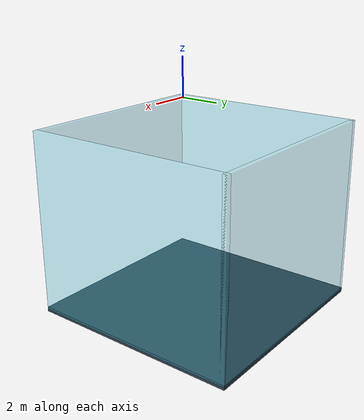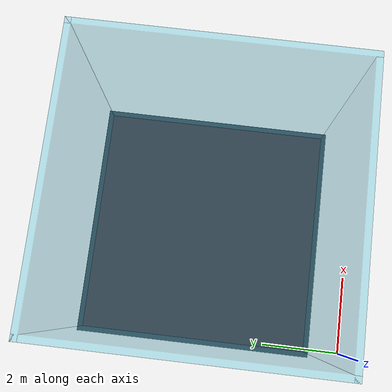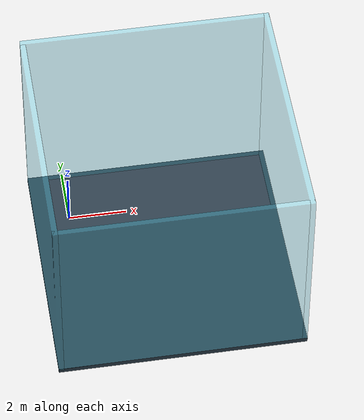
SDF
<sdf version="1.9">
 <world name="ibvs_gz">
  <physics name="default_physics" type="ignored">
   <max_step_size>0.001</max_step_size>
   <real_time_factor>1.0</real_time_factor>
  </physics>
  <plugin filename="gz-sim-physics-system" name="gz::sim::systems::Physics"/>
  <plugin filename="gz-sim-user-commands-system" name="gz::sim::systems::UserCommands"/>
  <plugin filename="gz-sim-scene-broadcaster-system" name="gz::sim::systems::SceneBroadcaster"/>
  <plugin filename="libgz-sim-imu-system.so" name="gz::sim::systems::Imu"/>
  <plugin filename="gz-sim-sensors-system" name="gz::sim::systems::Sensors">
   <render_engine>ogre2</render_engine>
  </plugin>
  <plugin filename="gz-sim-buoyancy-system" name="gz::sim::systems::Buoyancy">
   <graded_buoyancy>
    <default_density>1000</default_density>
    <density_change><above_depth>0</above_depth><density>1</density></density_change>
   </graded_buoyancy>
   <enable>bluerov2_ping</enable>
  </plugin>
  <include><uri>https://fuel.gazebosim.org/1.0/OpenRobotics/models/Sun</uri></include>
  <model name="underwater_tank">
   <static>true</static>
   <pose>4.0 4.0 -4 0 0 0</pose>
   <link name="floor">
    <pose>0 0 -4.0 0 0 0</pose>
    <collision name="collision"><geometry><box><size>9.4 9.4 0.2</size></box></geometry></collision>
    <visual name="visual">
     <geometry><box><size>9.4 9.4 0.2</size></box></geometry>
     <material>
      <ambient>0.18 0.25 0.30 1</ambient>
      <diffuse>0.18 0.25 0.30 1</diffuse>
      <specular>0.25 0.25 0.25 1</specular>
     </material>
    </visual>
   </link>
   <link name="wall_left">
    <pose>-4.6 0 0 0 0 0</pose>
    <collision name="collision"><geometry><box><size>0.2 9.4 8</size></box></geometry></collision>
    <visual name="visual">
     <geometry><box><size>0.2 9.4 8</size></box></geometry>
     <transparency>0.35</transparency>
     <material>
      <ambient>0.25 0.75 0.85 0.35</ambient>
      <diffuse>0.25 0.75 0.85 0.35</diffuse>
      <specular>0.8 0.9 1.0 0.35</specular>
     </material>
    </visual>
   </link>
   <link name="wall_right">
    <pose>4.6 0 0 0 0 0</pose>
    <collision name="collision"><geometry><box><size>0.2 9.4 8</size></box></geometry></collision>
    <visual name="visual">
     <geometry><box><size>0.2 9.4 8</size></box></geometry>
     <transparency>0.35</transparency>
     <material>
      <ambient>0.25 0.75 0.85 0.35</ambient>
      <diffuse>0.25 0.75 0.85 0.35</diffuse>
      <specular>0.8 0.9 1.0 0.35</specular>
     </material>
    </visual>
   </link>
   <link name="wall_front">
    <pose>0 -4.6 0 0 0 0</pose>
    <collision name="collision"><geometry><box><size>9.4 0.2 8</size></box></geometry></collision>
    <visual name="visual">
     <geometry><box><size>9.4 0.2 8</size></box></geometry>
     <transparency>0.35</transparency>
     <material>
      <ambient>0.25 0.75 0.85 0.35</ambient>
      <diffuse>0.25 0.75 0.85 0.35</diffuse>
      <specular>0.8 0.9 1.0 0.35</specular>
     </material>
    </visual>
   </link>
   <link name="wall_back">
    <pose>0 4.6 0 0 0 0</pose>
    <collision name="collision"><geometry><box><size>9.4 0.2 8</size></box></geometry></collision>
    <visual name="visual">
     <geometry><box><size>9.4 0.2 8</size></box></geometry>
     <transparency>0.35</transparency>
     <material>
      <ambient>0.25 0.75 0.85 0.35</ambient>
      <diffuse>0.25 0.75 0.85 0.35</diffuse>
      <specular>0.8 0.9 1.0 0.35</specular>
     </material>
    </visual>
   </link>
  </model>
 </world>
</sdf>
